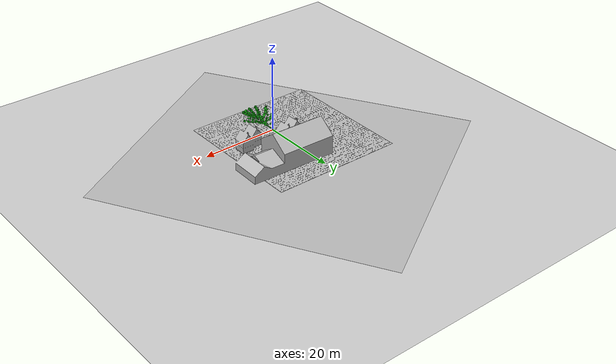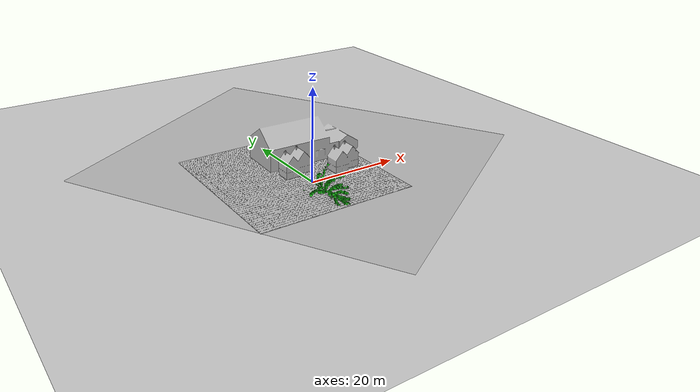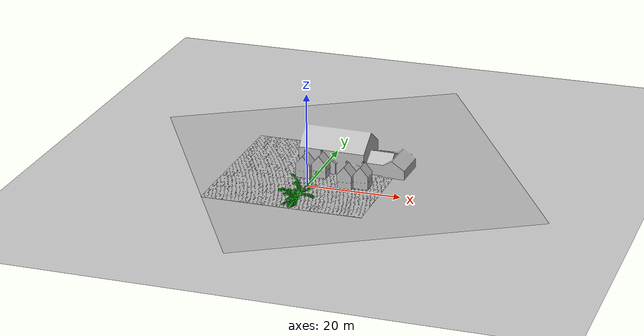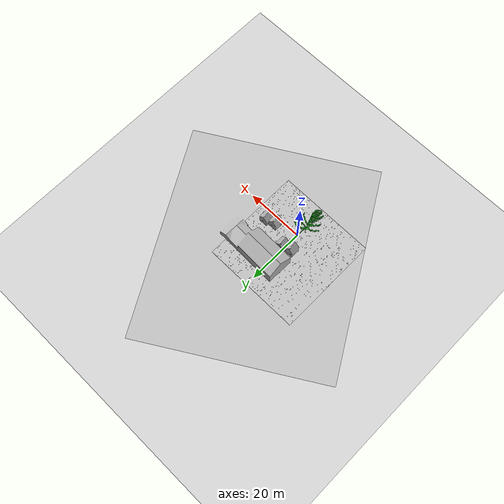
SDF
<?xml version="1.0" ?>
<sdf version="1.4">
  <world name="world">
    <include>
      <uri>model://ground_plane</uri>
    </include>

    <model name="floor">
      <static>true</static>
      <link name="body">
        <visual name="visual">
          <pose>0.0 5.5 0.0 0 0 0</pose>
          <geometry>
            <mesh><uri>model://floor/floor.dae</uri></mesh>
          </geometry>
        </visual>
      </link>
    </model>

    <gui fullscreen='0'>
      <camera name='user_camera'>
        <pose>0.0 0.0 15.0 0.0 1.57 1.57</pose>
        <view_controller>orbit</view_controller>
      </camera>
    </gui>

    <light type="directional" name="sun1">
      <cast_shadows>true</cast_shadows>
      <pose>0 0 10 0 0 0</pose>
      <diffuse>0.8 0.8 0.8 1</diffuse>
      <specular>0.2 0.2 0.2 1</specular>
      <attenuation>
        <range>100</range>
        <constant>0.9</constant>
        <linear>0.01</linear>
        <quadratic>0.001</quadratic>
      </attenuation>
      <direction>0.5 0.5 -0.9</direction>
    </light>

    <light type="point" name="sun2">
      <cast_shadows>true</cast_shadows>
      <pose>8 -2 15 0 0 0</pose>
      <diffuse>0.8 0.8 0.8 1</diffuse>
      <specular>0.2 0.2 0.2 1</specular>
      <attenuation>
        <range>50</range>
        <constant>0.3</constant>
        <linear>0.0</linear>
        <quadratic>0.00</quadratic>
      </attenuation>
      <direction>0.1 0.5 -0.9</direction>
    </light>

    <model name="house 1">
      <static>true</static>
      <link name="body">
        <visual name="visual">
          <pose>0.0 3.0 0.0 0 0 0</pose>
          <geometry>
            <mesh><uri>model://house/house.dae</uri></mesh>
          </geometry>
        </visual>
        <collision name="collision">
          <pose>0.0 3 0.0 0 0 0</pose>
          <geometry>
            <mesh><uri>model://house/house.stl</uri></mesh>
          </geometry>
        </collision>
     </link>
    </model>

    <model name="house 2">
      <static>true</static>
      <link name="body">
        <visual name="visual">
          <pose>5.0 12.0 0.0 0 0 -1.0</pose>
          <geometry>
            <mesh><uri>model://house2/house2.dae</uri></mesh>
          </geometry>
        </visual>
        <collision name="collision">
          <pose>5.0 12 0.0 0 0 -1.0</pose>
          <geometry>
            <mesh><uri>model://house2/house2.stl</uri></mesh>
          </geometry>
        </collision>
     </link>
    </model>

    <model name="house 0">
      <static>true</static>
      <link name="body">
        <visual name="visual">
          <pose>10.0 0.0 0.0 0 0 0</pose>
          <geometry>
            <mesh><uri>model://house/house.dae</uri></mesh>
          </geometry>
        </visual>
        <collision name="collision">
          <pose>10.0 0.0 0.0 0 0 0</pose>
          <geometry>
            <mesh><uri>model://house/house.stl</uri></mesh>
          </geometry>
        </collision>
      </link>
    </model>

    <model name='3DTree'>
      <static>1</static>
      <link name='3dtree'>
        <pose>0 0 0 1.57 -0 0</pose>
        <collision name='collision'>
          <geometry>
            <mesh>
              <uri>model://3DTree/meshes/3DTree.dae</uri>
            </mesh>
          </geometry>
          <max_contacts>10</max_contacts>
          <surface>
            <bounce/>
            <friction>
              <ode/>
            </friction>
            <contact>
              <ode/>
            </contact>
          </surface>
        </collision>
        <visual name='visual'>
          <geometry>
            <mesh>
              <uri>model://3DTree/meshes/3DTree.dae</uri>
            </mesh>
          </geometry>
        </visual>
        <velocity_decay>
          <linear>0</linear>
          <angular>0</angular>
        </velocity_decay>
        <self_collide>0</self_collide>
        <kinematic>0</kinematic>
        <gravity>1</gravity>
      </link>
      <pose>0 1 0 0 -0 0</pose>
    </model>

  </world>
</sdf>
